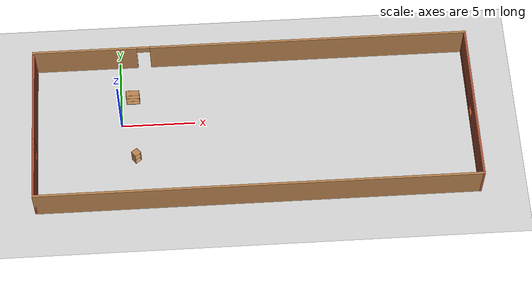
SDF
<sdf version="1.7">
 <world name="default">
  <light name="sun" type="directional">
   <pose>0 0 10 0 -0 0</pose>
   <diffuse>0.8 0.8 0.8 1</diffuse>
   <specular>0.2 0.2 0.2 1</specular>
   <attenuation>
    <range>1000</range>
    <constant>0.9</constant>
    <linear>0.01</linear>
    <quadratic>0.001</quadratic>
   </attenuation>
   <direction>-0.5 0.1 -0.9</direction>
   <spot><inner_angle>0</inner_angle><outer_angle>0</outer_angle><falloff>0</falloff></spot>
  </light>
  <model name="ground_plane">
   <static>1</static>
   <link name="link">
    <collision name="collision">
     <geometry><plane><normal>0 0 1</normal><size>100 100</size></plane></geometry>
     <surface>
      <contact><collide_bitmask>65535</collide_bitmask></contact>
      <friction><ode><mu>100</mu><mu2>50</mu2></ode></friction>
     </surface>
    </collision>
    <visual name="visual">
     <cast_shadows>0</cast_shadows>
     <geometry><plane><normal>0 0 1</normal><size>100 100</size></plane></geometry>
     <material>
      <script><uri>file://media/materials/scripts/gazebo.material</uri><name>Gazebo/Grey</name></script>
     </material>
    </visual>
   </link>
  </model>
  <gravity>0 0 -9.8</gravity>
  <magnetic_field>6e-06 2.3e-05 -4.2e-05</magnetic_field>
  <atmosphere type="adiabatic"/>
  <physics type="ode">
   <max_step_size>0.001</max_step_size>
   <real_time_factor>1</real_time_factor>
   <real_time_update_rate>1000</real_time_update_rate>
  </physics>
  <scene><ambient>0.4 0.4 0.4 1</ambient><background>0.7 0.7 0.7 1</background><shadows>1</shadows></scene>
  <audio><device>default</device></audio>
  <spherical_coordinates>
   <surface_model>EARTH_WGS84</surface_model>
   <latitude_deg>0</latitude_deg>
   <longitude_deg>0</longitude_deg>
   <elevation>0</elevation>
   <heading_deg>0</heading_deg>
  </spherical_coordinates>
  <model name="bookshelf">
   <static>1</static>
   <link name="link">
    <inertial><mass>1</mass></inertial>
    <collision name="back">
     <pose>0 0.005 0.6 0 -0 0</pose>
     <geometry><box><size>0.9 0.01 1.2</size></box></geometry>
    </collision>
    <visual name="visual1">
     <pose>0 0.005 0.6 0 -0 0</pose>
     <geometry><box><size>0.9 0.01 1.2</size></box></geometry>
     <material>
      <script><uri>file://media/materials/scripts/gazebo.material</uri><name>Gazebo/Wood</name></script>
     </material>
    </visual>
    <collision name="left_side">
     <pose>0.45 -0.195 0.6 0 -0 0</pose>
     <geometry><box><size>0.02 0.4 1.2</size></box></geometry>
    </collision>
    <visual name="visual2">
     <pose>0.45 -0.195 0.6 0 -0 0</pose>
     <geometry><box><size>0.02 0.4 1.2</size></box></geometry>
     <material>
      <script><uri>file://media/materials/scripts/gazebo.material</uri><name>Gazebo/Wood</name></script>
     </material>
    </visual>
    <collision name="right_side">
     <pose>-0.45 -0.195 0.6 0 -0 0</pose>
     <geometry><box><size>0.02 0.4 1.2</size></box></geometry>
    </collision>
    <visual name="visual3">
     <pose>-0.45 -0.195 0.6 0 -0 0</pose>
     <geometry><box><size>0.02 0.4 1.2</size></box></geometry>
     <material>
      <script><uri>file://media/materials/scripts/gazebo.material</uri><name>Gazebo/Wood</name></script>
     </material>
    </visual>
    <collision name="bottom">
     <pose>0 -0.195 0.03 0 -0 0</pose>
     <geometry><box><size>0.88 0.4 0.06</size></box></geometry>
    </collision>
    <visual name="visual4">
     <pose>0 -0.195 0.03 0 -0 0</pose>
     <geometry><box><size>0.88 0.4 0.06</size></box></geometry>
     <material>
      <script><uri>file://media/materials/scripts/gazebo.material</uri><name>Gazebo/Wood</name></script>
     </material>
    </visual>
    <collision name="top">
     <pose>0 -0.195 1.19 0 -0 0</pose>
     <geometry><box><size>0.88 0.4 0.02</size></box></geometry>
    </collision>
    <visual name="visual5">
     <pose>0 -0.195 1.19 0 -0 0</pose>
     <geometry><box><size>0.88 0.4 0.02</size></box></geometry>
     <material>
      <script><uri>file://media/materials/scripts/gazebo.material</uri><name>Gazebo/Wood</name></script>
     </material>
    </visual>
    <collision name="low_shelf">
     <pose>0 -0.195 0.43 0 -0 0</pose>
     <geometry><box><size>0.88 0.4 0.02</size></box></geometry>
    </collision>
    <visual name="visual6">
     <pose>0 -0.195 0.43 0 -0 0</pose>
     <geometry><box><size>0.88 0.4 0.02</size></box></geometry>
     <material>
      <script><uri>file://media/materials/scripts/gazebo.material</uri><name>Gazebo/Wood</name></script>
     </material>
    </visual>
    <collision name="high_shelf">
     <pose>0 -0.195 0.8 0 -0 0</pose>
     <geometry><box><size>0.88 0.4 0.02</size></box></geometry>
    </collision>
    <visual name="visual7">
     <pose>0 -0.195 0.8 0 -0 0</pose>
     <geometry><box><size>0.88 0.4 0.02</size></box></geometry>
     <material>
      <script><uri>file://media/materials/scripts/gazebo.material</uri><name>Gazebo/Wood</name></script>
     </material>
    </visual>
   </link>
   <pose>0.812502 2.10756 0 0 -0 0</pose>
  </model>
  <model name="cabinet">
   <static>1</static>
   <link name="cabinet_bottom_plate">
    <inertial>
     <pose>0 0 -1 0 -0 0</pose>
     <inertia><ixx>2.05</ixx><ixy>0</ixy><ixz>0</ixz><iyy>2.05</iyy><iyz>0</iyz><izz>2.05</izz></inertia>
     <mass>25</mass>
    </inertial>
    <collision name="cabinet_bottom_plate_geom">
     <pose>0 0 0.01 0 -0 0</pose>
     <geometry><box><size>0.45 0.45 0.02</size></box></geometry>
    </collision>
    <visual name="cabinet_bottom_plate_geom_visual">
     <pose>0 0 0.01 0 -0 0</pose>
     <geometry><box><size>0.45 0.45 0.02</size></box></geometry>
     <material>
      <script><uri>file://media/materials/scripts/gazebo.material</uri><name>Gazebo/Wood</name></script>
     </material>
    </visual>
    <collision name="cabinet_bottom_plate_geom_cabinet_back_plate">
     <pose>0.235 0 0.51 0 -0 0</pose>
     <geometry><box><size>0.02 0.45 1.02</size></box></geometry>
    </collision>
    <visual name="cabinet_bottom_plate_geom_cabinet_back_plate_visual">
     <pose>0.235 0 0.51 0 -0 0</pose>
     <geometry><box><size>0.02 0.45 1.02</size></box></geometry>
     <material>
      <script><uri>file://media/materials/scripts/gazebo.material</uri><name>Gazebo/Wood</name></script>
     </material>
    </visual>
    <collision name="cabinet_bottom_plate_geom_cabinet_left_plate">
     <pose>0 0.235 0.51 0 -0 0</pose>
     <geometry><box><size>0.45 0.02 1.02</size></box></geometry>
    </collision>
    <visual name="cabinet_bottom_plate_geom_cabinet_left_plate_visual">
     <pose>0 0.235 0.51 0 -0 0</pose>
     <geometry><box><size>0.45 0.02 1.02</size></box></geometry>
     <material>
      <script><uri>file://media/materials/scripts/gazebo.material</uri><name>Gazebo/Wood</name></script>
     </material>
    </visual>
    <collision name="cabinet_bottom_plate_geom_cabinet_middle_plate">
     <pose>0 0 0.51 0 -0 0</pose>
     <geometry><box><size>0.45 0.45 0.02</size></box></geometry>
    </collision>
    <visual name="cabinet_bottom_plate_geom_cabinet_middle_plate_visual">
     <pose>0 0 0.51 0 -0 0</pose>
     <geometry><box><size>0.45 0.45 0.02</size></box></geometry>
     <material>
      <script><uri>file://media/materials/scripts/gazebo.material</uri><name>Gazebo/Wood</name></script>
     </material>
    </visual>
    <collision name="cabinet_bottom_plate_geom_cabinet_right_plate">
     <pose>0 -0.235 0.51 0 -0 0</pose>
     <geometry><box><size>0.45 0.02 1.02</size></box></geometry>
    </collision>
    <visual name="cabinet_bottom_plate_geom_cabinet_right_plate_visual">
     <pose>0 -0.235 0.51 0 -0 0</pose>
     <geometry><box><size>0.45 0.02 1.02</size></box></geometry>
     <material>
      <script><uri>file://media/materials/scripts/gazebo.material</uri><name>Gazebo/Wood</name></script>
     </material>
    </visual>
    <collision name="cabinet_bottom_plate_geom_cabinet_top_plate">
     <pose>0 0 1.01 0 -0 0</pose>
     <geometry><box><size>0.45 0.45 0.02</size></box></geometry>
    </collision>
    <visual name="cabinet_bottom_plate_geom_cabinet_top_plate_visual">
     <pose>0 0 1.01 0 -0 0</pose>
     <geometry><box><size>0.45 0.45 0.02</size></box></geometry>
     <material>
      <script><uri>file://media/materials/scripts/gazebo.material</uri><name>Gazebo/Wood</name></script>
     </material>
    </visual>
   </link>
   <pose>0.949991 -2.64875 0 0 -0 2.20891</pose>
  </model>
  <model name="demo_world">
   <pose>9.06996 -0.79668 0 0 -0 0</pose>
   <link name="Door_1">
    <collision name="Door_1_Collision">
     <geometry><box><size>0.9 0.17 2</size></box></geometry>
     <pose>0 0 1 0 -0 0</pose>
    </collision>
    <visual name="Door_1_Visual">
     <pose>0 0 1 0 -0 0</pose>
     <geometry><box><size>0.9 0.17 2</size></box></geometry>
     <material>
      <script><uri>file://media/materials/scripts/gazebo.material</uri><name>Gazebo/Grey</name></script>
     </material>
    </visual>
    <pose>-1.04081 -5.45755 0 0 -0 0</pose>
   </link>
   <link name="Wall_2">
    <pose>-14.925 -0.125 0 0 -0 -1.5708</pose>
    <visual name="Wall_2_Visual_0">
     <pose>-2.20837 0 1.25 0 -0 0</pose>
     <geometry><box><size>6.58326 0.15 2.5</size></box></geometry>
     <material>
      <script><uri>file://media/materials/scripts/gazebo.material</uri><name>Gazebo/Bricks</name></script>
      <ambient>1 1 1 1</ambient>
     </material>
     <meta><layer>0</layer></meta>
    </visual>
    <collision name="Wall_2_Collision_0">
     <geometry><box><size>6.58326 0.15 2.5</size></box></geometry>
     <pose>-2.20837 0 1.25 0 -0 0</pose>
    </collision>
    <visual name="Wall_2_Visual_1">
     <pose>3.29163 0 0.25 0 -0 0</pose>
     <geometry><box><size>4.41674 0.15 0.5</size></box></geometry>
     <material>
      <script><uri>file://media/materials/scripts/gazebo.material</uri><name>Gazebo/Bricks</name></script>
      <ambient>1 1 1 1</ambient>
     </material>
     <meta><layer>0</layer></meta>
    </visual>
    <collision name="Wall_2_Collision_1">
     <geometry><box><size>4.41674 0.15 0.5</size></box></geometry>
     <pose>3.29163 0 0.25 0 -0 0</pose>
    </collision>
    <visual name="Wall_2_Visual_2">
     <pose>3.69163 0 1.5 0 -0 0</pose>
     <geometry><box><size>3.61674 0.15 2</size></box></geometry>
     <material>
      <script><uri>file://media/materials/scripts/gazebo.material</uri><name>Gazebo/Bricks</name></script>
      <ambient>1 1 1 1</ambient>
     </material>
     <meta><layer>0</layer></meta>
    </visual>
    <collision name="Wall_2_Collision_2">
     <geometry><box><size>3.61674 0.15 2</size></box></geometry>
     <pose>3.69163 0 1.5 0 -0 0</pose>
    </collision>
    <visual name="Wall_2_Visual_3">
     <pose>1.48325 0 1.9 0 -0 0</pose>
     <geometry><box><size>0.8 0.15 1.2</size></box></geometry>
     <material>
      <script><uri>file://media/materials/scripts/gazebo.material</uri><name>Gazebo/Bricks</name></script>
      <ambient>1 1 1 1</ambient>
     </material>
     <meta><layer>0</layer></meta>
    </visual>
    <collision name="Wall_2_Collision_3">
     <geometry><box><size>0.8 0.15 1.2</size></box></geometry>
     <pose>1.48325 0 1.9 0 -0 0</pose>
    </collision>
   </link>
   <link name="Wall_3">
    <collision name="Wall_3_Collision">
     <geometry><box><size>30 0.15 2.5</size></box></geometry>
     <pose>0 0 1.25 0 -0 0</pose>
    </collision>
    <visual name="Wall_3_Visual">
     <pose>0 0 1.25 0 -0 0</pose>
     <geometry><box><size>30 0.15 2.5</size></box></geometry>
     <material>
      <script><uri>file://media/materials/scripts/gazebo.material</uri><name>Gazebo/Wood</name></script>
      <ambient>1 1 1 1</ambient>
     </material>
     <meta><layer>0</layer></meta>
    </visual>
    <pose>0 -5.55 0 0 -0 0</pose>
   </link>
   <link name="Wall_4">
    <pose>14.925 -0 0 0 -0 1.5708</pose>
    <visual name="Wall_4_Visual_0">
     <pose>-2.94176 0 1.25 0 -0 0</pose>
     <geometry><box><size>5.36649 0.15 2.5</size></box></geometry>
     <material>
      <script><uri>file://media/materials/scripts/gazebo.material</uri><name>Gazebo/Bricks</name></script>
      <ambient>1 1 1 1</ambient>
     </material>
     <meta><layer>0</layer></meta>
    </visual>
    <collision name="Wall_4_Collision_0">
     <geometry><box><size>5.36649 0.15 2.5</size></box></geometry>
     <pose>-2.94176 0 1.25 0 -0 0</pose>
    </collision>
    <visual name="Wall_4_Visual_1">
     <pose>2.68324 0 0.25 0 -0 0</pose>
     <geometry><box><size>5.88351 0.15 0.5</size></box></geometry>
     <material>
      <script><uri>file://media/materials/scripts/gazebo.material</uri><name>Gazebo/Bricks</name></script>
      <ambient>1 1 1 1</ambient>
     </material>
     <meta><layer>0</layer></meta>
    </visual>
    <collision name="Wall_4_Collision_1">
     <geometry><box><size>5.88351 0.15 0.5</size></box></geometry>
     <pose>2.68324 0 0.25 0 -0 0</pose>
    </collision>
    <visual name="Wall_4_Visual_2">
     <pose>3.08324 0 1.5 0 -0 0</pose>
     <geometry><box><size>5.08351 0.15 2</size></box></geometry>
     <material>
      <script><uri>file://media/materials/scripts/gazebo.material</uri><name>Gazebo/Bricks</name></script>
      <ambient>1 1 1 1</ambient>
     </material>
     <meta><layer>0</layer></meta>
    </visual>
    <collision name="Wall_4_Collision_2">
     <geometry><box><size>5.08351 0.15 2</size></box></geometry>
     <pose>3.08324 0 1.5 0 -0 0</pose>
    </collision>
    <visual name="Wall_4_Visual_3">
     <pose>0.141486 0 1.9 0 -0 0</pose>
     <geometry><box><size>0.8 0.15 1.2</size></box></geometry>
     <material>
      <script><uri>file://media/materials/scripts/gazebo.material</uri><name>Gazebo/Bricks</name></script>
      <ambient>1 1 1 1</ambient>
     </material>
     <meta><layer>0</layer></meta>
    </visual>
    <collision name="Wall_4_Collision_3">
     <geometry><box><size>0.8 0.15 1.2</size></box></geometry>
     <pose>0.141486 0 1.9 0 -0 0</pose>
    </collision>
   </link>
   <link name="Wall_5">
    <pose>0 5.55 0 0 -0 3.14159</pose>
    <visual name="Wall_5_Visual_0">
     <pose>-4.03591 0 1.25 0 -0 0</pose>
     <geometry><box><size>21.9282 0.15 2.5</size></box></geometry>
     <material>
      <script><uri>file://media/materials/scripts/gazebo.material</uri><name>Gazebo/Wood</name></script>
      <ambient>1 1 1 1</ambient>
     </material>
     <meta><layer>0</layer></meta>
    </visual>
    <collision name="Wall_5_Collision_0">
     <geometry><box><size>21.9282 0.15 2.5</size></box></geometry>
     <pose>-4.03591 0 1.25 0 -0 0</pose>
    </collision>
    <visual name="Wall_5_Visual_1">
     <pose>11.4141 0 1.25 0 -0 0</pose>
     <geometry><box><size>7.17182 0.15 2.5</size></box></geometry>
     <material>
      <script><uri>file://media/materials/scripts/gazebo.material</uri><name>Gazebo/Wood</name></script>
      <ambient>1 1 1 1</ambient>
     </material>
     <meta><layer>0</layer></meta>
    </visual>
    <collision name="Wall_5_Collision_1">
     <geometry><box><size>7.17182 0.15 2.5</size></box></geometry>
     <pose>11.4141 0 1.25 0 -0 0</pose>
    </collision>
    <visual name="Wall_5_Visual_2">
     <pose>7.37818 0 2.25 0 -0 0</pose>
     <geometry><box><size>0.9 0.15 0.5</size></box></geometry>
     <material>
      <script><uri>file://media/materials/scripts/gazebo.material</uri><name>Gazebo/Wood</name></script>
      <ambient>1 1 1 1</ambient>
     </material>
     <meta><layer>0</layer></meta>
    </visual>
    <collision name="Wall_5_Collision_2">
     <geometry><box><size>0.9 0.15 0.5</size></box></geometry>
     <pose>7.37818 0 2.25 0 -0 0</pose>
    </collision>
   </link>
   <static>1</static>
  </model>
 </world>
</sdf>
